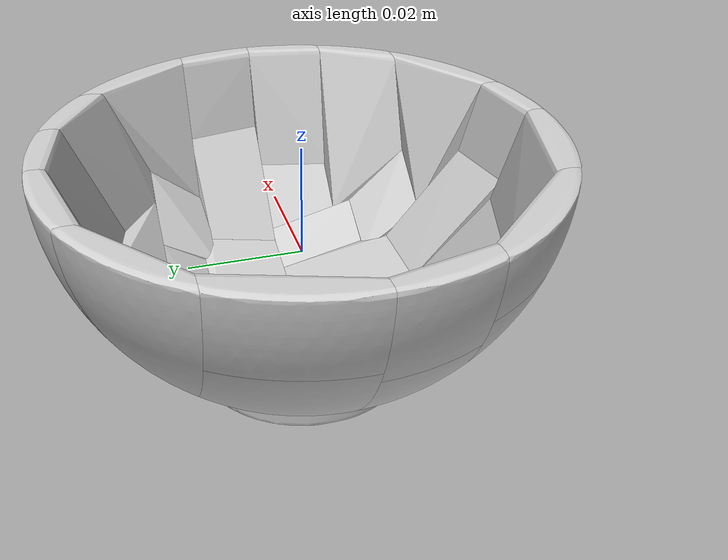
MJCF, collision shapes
<mujoco model="bowl">
  <asset>
    <mesh file="meshes/bowl.obj" name="bowl_visual_mesh"
          scale="0.001 0.001 0.001" refpos="73.82 62.75 21.56"/>
    <mesh file="meshes/bowl_decomp/bowl_part_00.obj" name="bowl_col_00"
          scale="0.001 0.001 0.001" refpos="73.82 62.75 21.56"/>
    <mesh file="meshes/bowl_decomp/bowl_part_01.obj" name="bowl_col_01"
          scale="0.001 0.001 0.001" refpos="73.82 62.75 21.56"/>
    <mesh file="meshes/bowl_decomp/bowl_part_02.obj" name="bowl_col_02"
          scale="0.001 0.001 0.001" refpos="73.82 62.75 21.56"/>
    <mesh file="meshes/bowl_decomp/bowl_part_03.obj" name="bowl_col_03"
          scale="0.001 0.001 0.001" refpos="73.82 62.75 21.56"/>
    <mesh file="meshes/bowl_decomp/bowl_part_04.obj" name="bowl_col_04"
          scale="0.001 0.001 0.001" refpos="73.82 62.75 21.56"/>
    <mesh file="meshes/bowl_decomp/bowl_part_05.obj" name="bowl_col_05"
          scale="0.001 0.001 0.001" refpos="73.82 62.75 21.56"/>
    <mesh file="meshes/bowl_decomp/bowl_part_06.obj" name="bowl_col_06"
          scale="0.001 0.001 0.001" refpos="73.82 62.75 21.56"/>
    <mesh file="meshes/bowl_decomp/bowl_part_07.obj" name="bowl_col_07"
          scale="0.001 0.001 0.001" refpos="73.82 62.75 21.56"/>
    <mesh file="meshes/bowl_decomp/bowl_part_08.obj" name="bowl_col_08"
          scale="0.001 0.001 0.001" refpos="73.82 62.75 21.56"/>
    <mesh file="meshes/bowl_decomp/bowl_part_09.obj" name="bowl_col_09"
          scale="0.001 0.001 0.001" refpos="73.82 62.75 21.56"/>
    <mesh file="meshes/bowl_decomp/bowl_part_10.obj" name="bowl_col_10"
          scale="0.001 0.001 0.001" refpos="73.82 62.75 21.56"/>
    <mesh file="meshes/bowl_decomp/bowl_part_11.obj" name="bowl_col_11"
          scale="0.001 0.001 0.001" refpos="73.82 62.75 21.56"/>
    <mesh file="meshes/bowl_decomp/bowl_part_12.obj" name="bowl_col_12"
          scale="0.001 0.001 0.001" refpos="73.82 62.75 21.56"/>
    <mesh file="meshes/bowl_decomp/bowl_part_13.obj" name="bowl_col_13"
          scale="0.001 0.001 0.001" refpos="73.82 62.75 21.56"/>
    <mesh file="meshes/bowl_decomp/bowl_part_14.obj" name="bowl_col_14"
          scale="0.001 0.001 0.001" refpos="73.82 62.75 21.56"/>
    <mesh file="meshes/bowl_decomp/bowl_part_15.obj" name="bowl_col_15"
          scale="0.001 0.001 0.001" refpos="73.82 62.75 21.56"/>
    <mesh file="meshes/bowl_decomp/bowl_part_16.obj" name="bowl_col_16"
          scale="0.001 0.001 0.001" refpos="73.82 62.75 21.56"/>
    <mesh file="meshes/bowl_decomp/bowl_part_17.obj" name="bowl_col_17"
          scale="0.001 0.001 0.001" refpos="73.82 62.75 21.56"/>
    <mesh file="meshes/bowl_decomp/bowl_part_18.obj" name="bowl_col_18"
          scale="0.001 0.001 0.001" refpos="73.82 62.75 21.56"/>
    <mesh file="meshes/bowl_decomp/bowl_part_19.obj" name="bowl_col_19"
          scale="0.001 0.001 0.001" refpos="73.82 62.75 21.56"/>
    <mesh file="meshes/bowl_decomp/bowl_part_20.obj" name="bowl_col_20"
          scale="0.001 0.001 0.001" refpos="73.82 62.75 21.56"/>
    <mesh file="meshes/bowl_decomp/bowl_part_21.obj" name="bowl_col_21"
          scale="0.001 0.001 0.001" refpos="73.82 62.75 21.56"/>
    <mesh file="meshes/bowl_decomp/bowl_part_22.obj" name="bowl_col_22"
          scale="0.001 0.001 0.001" refpos="73.82 62.75 21.56"/>
    <mesh file="meshes/bowl_decomp/bowl_part_23.obj" name="bowl_col_23"
          scale="0.001 0.001 0.001" refpos="73.82 62.75 21.56"/>
    <mesh file="meshes/bowl_decomp/bowl_part_24.obj" name="bowl_col_24"
          scale="0.001 0.001 0.001" refpos="73.82 62.75 21.56"/>
    <mesh file="meshes/bowl_decomp/bowl_part_25.obj" name="bowl_col_25"
          scale="0.001 0.001 0.001" refpos="73.82 62.75 21.56"/>
    <mesh file="meshes/bowl_decomp/bowl_part_26.obj" name="bowl_col_26"
          scale="0.001 0.001 0.001" refpos="73.82 62.75 21.56"/>
    <mesh file="meshes/bowl_decomp/bowl_part_27.obj" name="bowl_col_27"
          scale="0.001 0.001 0.001" refpos="73.82 62.75 21.56"/>
    <mesh file="meshes/bowl_decomp/bowl_part_28.obj" name="bowl_col_28"
          scale="0.001 0.001 0.001" refpos="73.82 62.75 21.56"/>
    <mesh file="meshes/bowl_decomp/bowl_part_29.obj" name="bowl_col_29"
          scale="0.001 0.001 0.001" refpos="73.82 62.75 21.56"/>
    <mesh file="meshes/bowl_decomp/bowl_part_30.obj" name="bowl_col_30"
          scale="0.001 0.001 0.001" refpos="73.82 62.75 21.56"/>
    <mesh file="meshes/bowl_decomp/bowl_part_31.obj" name="bowl_col_31"
          scale="0.001 0.001 0.001" refpos="73.82 62.75 21.56"/>
  </asset>
  <worldbody>
    <body>
      <body name="object">
        <geom mesh="bowl_visual_mesh" type="mesh"
              solimp="0.998 0.998 0.001" solref="0.001 1"
              density="1e-8" rgba="0.8 0.8 0.8 1"
              contype="0" conaffinity="0" group="1"/>
        <geom mesh="bowl_col_00" type="mesh"
              solimp="0.998 0.998 0.001" solref="0.001 1"
              density="3.1250" friction="0.95 0.3 0.1" rgba="0.8 0.8 0.8 1"
              group="0"/>
        <geom mesh="bowl_col_01" type="mesh"
              solimp="0.998 0.998 0.001" solref="0.001 1"
              density="3.1250" friction="0.95 0.3 0.1" rgba="0.8 0.8 0.8 1"
              group="0"/>
        <geom mesh="bowl_col_02" type="mesh"
              solimp="0.998 0.998 0.001" solref="0.001 1"
              density="3.1250" friction="0.95 0.3 0.1" rgba="0.8 0.8 0.8 1"
              group="0"/>
        <geom mesh="bowl_col_03" type="mesh"
              solimp="0.998 0.998 0.001" solref="0.001 1"
              density="3.1250" friction="0.95 0.3 0.1" rgba="0.8 0.8 0.8 1"
              group="0"/>
        <geom mesh="bowl_col_04" type="mesh"
              solimp="0.998 0.998 0.001" solref="0.001 1"
              density="3.1250" friction="0.95 0.3 0.1" rgba="0.8 0.8 0.8 1"
              group="0"/>
        <geom mesh="bowl_col_05" type="mesh"
              solimp="0.998 0.998 0.001" solref="0.001 1"
              density="3.1250" friction="0.95 0.3 0.1" rgba="0.8 0.8 0.8 1"
              group="0"/>
        <geom mesh="bowl_col_06" type="mesh"
              solimp="0.998 0.998 0.001" solref="0.001 1"
              density="3.1250" friction="0.95 0.3 0.1" rgba="0.8 0.8 0.8 1"
              group="0"/>
        <geom mesh="bowl_col_07" type="mesh"
              solimp="0.998 0.998 0.001" solref="0.001 1"
              density="3.1250" friction="0.95 0.3 0.1" rgba="0.8 0.8 0.8 1"
              group="0"/>
        <geom mesh="bowl_col_08" type="mesh"
              solimp="0.998 0.998 0.001" solref="0.001 1"
              density="3.1250" friction="0.95 0.3 0.1" rgba="0.8 0.8 0.8 1"
              group="0"/>
        <geom mesh="bowl_col_09" type="mesh"
              solimp="0.998 0.998 0.001" solref="0.001 1"
              density="3.1250" friction="0.95 0.3 0.1" rgba="0.8 0.8 0.8 1"
              group="0"/>
        <geom mesh="bowl_col_10" type="mesh"
              solimp="0.998 0.998 0.001" solref="0.001 1"
              density="3.1250" friction="0.95 0.3 0.1" rgba="0.8 0.8 0.8 1"
              group="0"/>
        <geom mesh="bowl_col_11" type="mesh"
              solimp="0.998 0.998 0.001" solref="0.001 1"
              density="3.1250" friction="0.95 0.3 0.1" rgba="0.8 0.8 0.8 1"
              group="0"/>
        <geom mesh="bowl_col_12" type="mesh"
              solimp="0.998 0.998 0.001" solref="0.001 1"
              density="3.1250" friction="0.95 0.3 0.1" rgba="0.8 0.8 0.8 1"
              group="0"/>
        <geom mesh="bowl_col_13" type="mesh"
              solimp="0.998 0.998 0.001" solref="0.001 1"
              density="3.1250" friction="0.95 0.3 0.1" rgba="0.8 0.8 0.8 1"
              group="0"/>
        <geom mesh="bowl_col_14" type="mesh"
              solimp="0.998 0.998 0.001" solref="0.001 1"
              density="3.1250" friction="0.95 0.3 0.1" rgba="0.8 0.8 0.8 1"
              group="0"/>
        <geom mesh="bowl_col_15" type="mesh"
              solimp="0.998 0.998 0.001" solref="0.001 1"
              density="3.1250" friction="0.95 0.3 0.1" rgba="0.8 0.8 0.8 1"
              group="0"/>
        <geom mesh="bowl_col_16" type="mesh"
              solimp="0.998 0.998 0.001" solref="0.001 1"
              density="3.1250" friction="0.95 0.3 0.1" rgba="0.8 0.8 0.8 1"
              group="0"/>
        <geom mesh="bowl_col_17" type="mesh"
              solimp="0.998 0.998 0.001" solref="0.001 1"
              density="3.1250" friction="0.95 0.3 0.1" rgba="0.8 0.8 0.8 1"
              group="0"/>
        <geom mesh="bowl_col_18" type="mesh"
              solimp="0.998 0.998 0.001" solref="0.001 1"
              density="3.1250" friction="0.95 0.3 0.1" rgba="0.8 0.8 0.8 1"
              group="0"/>
        <geom mesh="bowl_col_19" type="mesh"
              solimp="0.998 0.998 0.001" solref="0.001 1"
              density="3.1250" friction="0.95 0.3 0.1" rgba="0.8 0.8 0.8 1"
              group="0"/>
        <geom mesh="bowl_col_20" type="mesh"
              solimp="0.998 0.998 0.001" solref="0.001 1"
              density="3.1250" friction="0.95 0.3 0.1" rgba="0.8 0.8 0.8 1"
              group="0"/>
        <geom mesh="bowl_col_21" type="mesh"
              solimp="0.998 0.998 0.001" solref="0.001 1"
              density="3.1250" friction="0.95 0.3 0.1" rgba="0.8 0.8 0.8 1"
              group="0"/>
        <geom mesh="bowl_col_22" type="mesh"
              solimp="0.998 0.998 0.001" solref="0.001 1"
              density="3.1250" friction="0.95 0.3 0.1" rgba="0.8 0.8 0.8 1"
              group="0"/>
        <geom mesh="bowl_col_23" type="mesh"
              solimp="0.998 0.998 0.001" solref="0.001 1"
              density="3.1250" friction="0.95 0.3 0.1" rgba="0.8 0.8 0.8 1"
              group="0"/>
        <geom mesh="bowl_col_24" type="mesh"
              solimp="0.998 0.998 0.001" solref="0.001 1"
              density="3.1250" friction="0.95 0.3 0.1" rgba="0.8 0.8 0.8 1"
              group="0"/>
        <geom mesh="bowl_col_25" type="mesh"
              solimp="0.998 0.998 0.001" solref="0.001 1"
              density="3.1250" friction="0.95 0.3 0.1" rgba="0.8 0.8 0.8 1"
              group="0"/>
        <geom mesh="bowl_col_26" type="mesh"
              solimp="0.998 0.998 0.001" solref="0.001 1"
              density="3.1250" friction="0.95 0.3 0.1" rgba="0.8 0.8 0.8 1"
              group="0"/>
        <geom mesh="bowl_col_27" type="mesh"
              solimp="0.998 0.998 0.001" solref="0.001 1"
              density="3.1250" friction="0.95 0.3 0.1" rgba="0.8 0.8 0.8 1"
              group="0"/>
        <geom mesh="bowl_col_28" type="mesh"
              solimp="0.998 0.998 0.001" solref="0.001 1"
              density="3.1250" friction="0.95 0.3 0.1" rgba="0.8 0.8 0.8 1"
              group="0"/>
        <geom mesh="bowl_col_29" type="mesh"
              solimp="0.998 0.998 0.001" solref="0.001 1"
              density="3.1250" friction="0.95 0.3 0.1" rgba="0.8 0.8 0.8 1"
              group="0"/>
        <geom mesh="bowl_col_30" type="mesh"
              solimp="0.998 0.998 0.001" solref="0.001 1"
              density="3.1250" friction="0.95 0.3 0.1" rgba="0.8 0.8 0.8 1"
              group="0"/>
        <geom mesh="bowl_col_31" type="mesh"
              solimp="0.998 0.998 0.001" solref="0.001 1"
              density="3.1250" friction="0.95 0.3 0.1" rgba="0.8 0.8 0.8 1"
              group="0"/>
      </body>
      <site rgba="0 0 0 0" size="0.005" pos="0 0 -0.022" name="bottom_site"/>
      <site rgba="0 0 0 0" size="0.005" pos="0 0 0.022"  name="top_site"/>
      <site rgba="0 0 0 0" size="0.005" pos="0.043 0.043 0" name="horizontal_radius_site"/>
    </body>
  </worldbody>
</mujoco>
